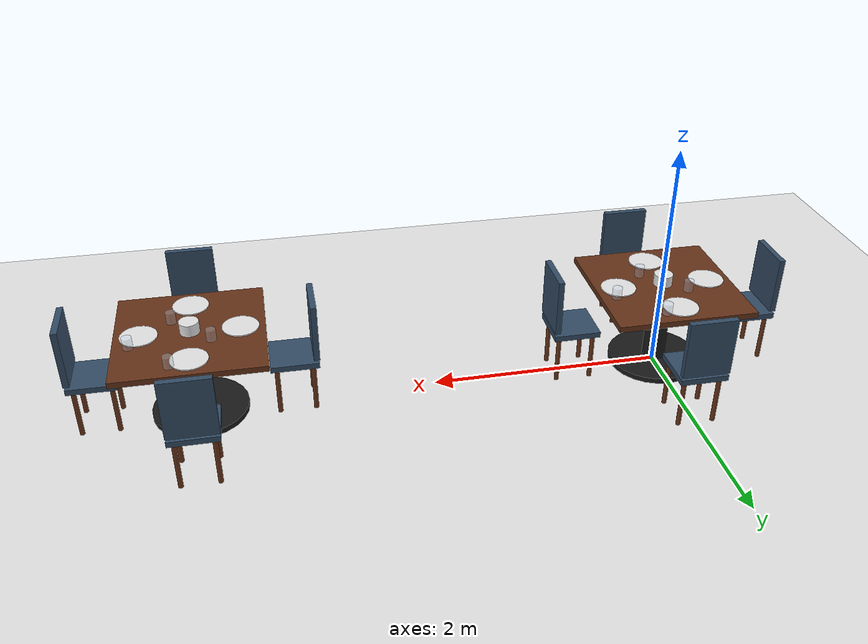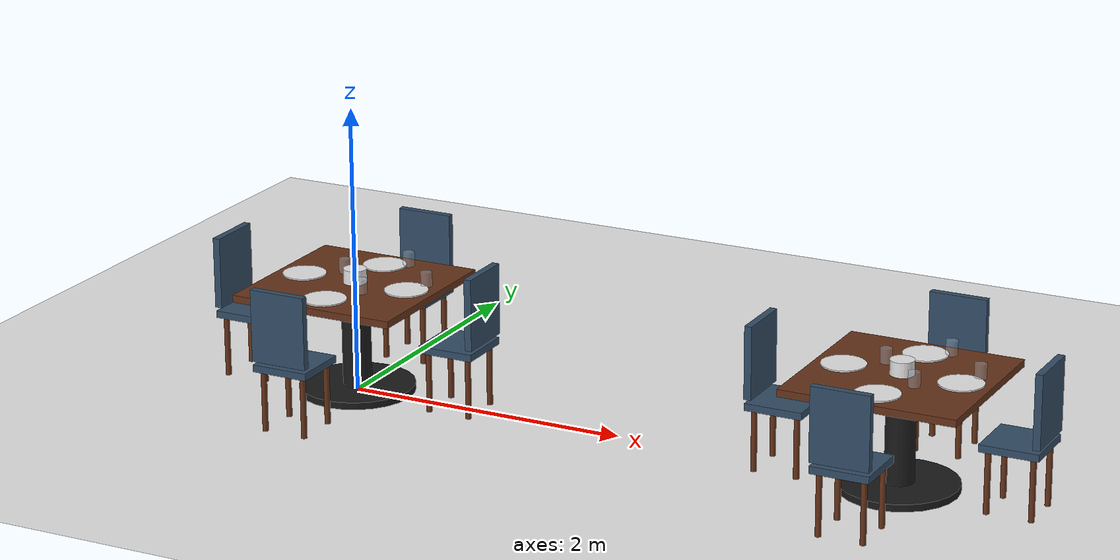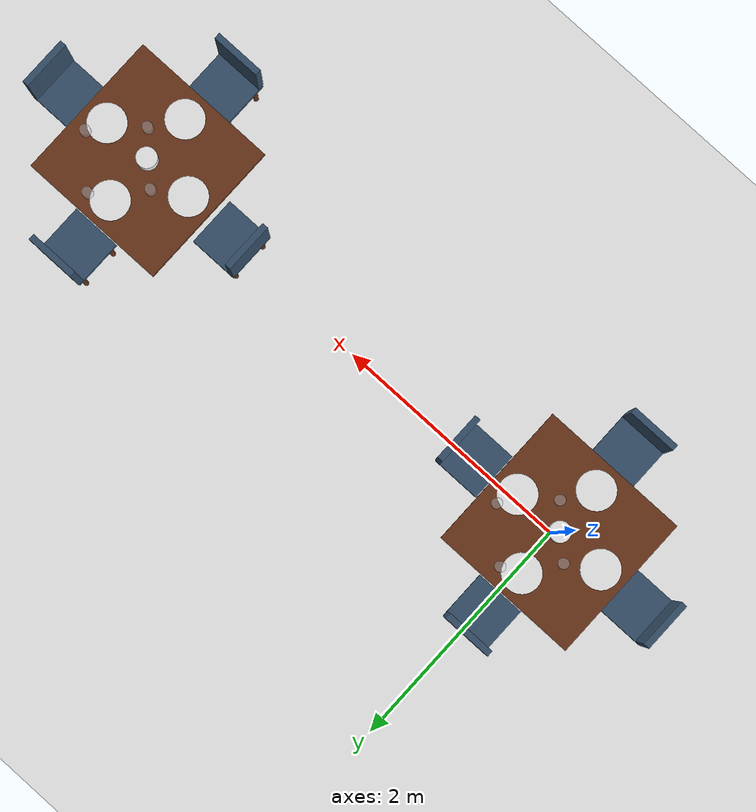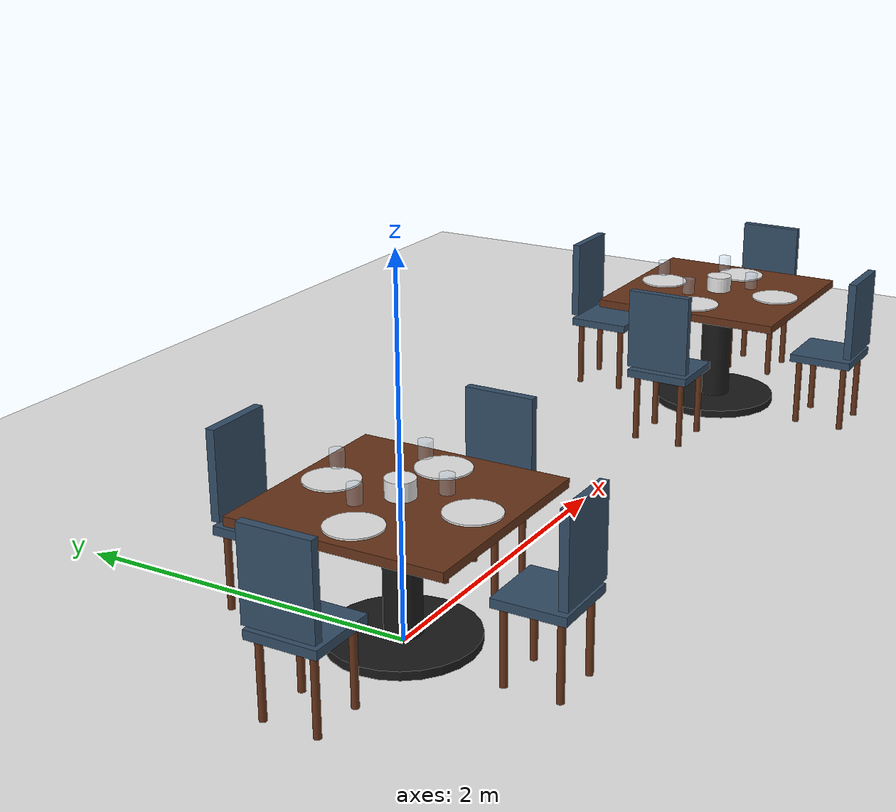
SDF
<sdf version="1.9">
 <world name="argo_restaurant">
  <model name="ground_plane">
   <static>true</static>
   <link name="link">
    <collision name="collision">
     <geometry><plane><normal>0 0 1</normal><size>100 100</size></plane></geometry>
    </collision>
    <visual name="visual">
     <geometry><plane><normal>0 0 1</normal><size>100 100</size></plane></geometry>
     <material>
      <ambient>0.9 0.9 0.9 1</ambient>
      <diffuse>0.9 0.9 0.9 1</diffuse>
      <specular>0.1 0.1 0.1 1</specular>
      <pbr><metal><roughness>0.1</roughness><metalness>0.0</metalness></metal></pbr>
     </material>
    </visual>
   </link>
  </model>
  <model name="table_4">
   <static>true</static>
   <link name="top_link">
    <pose>0.0 0 0.75 0 0 0</pose>
    <collision name="top_collision"><geometry><box><size>1.2 1.2 0.05</size></box></geometry></collision>
    <visual name="top_visual">
     <geometry><box><size>1.2 1.2 0.05</size></box></geometry>
     <material>
      <ambient>0.4 0.2 0.1 1</ambient>
      <diffuse>0.4 0.2 0.1 1</diffuse>
      <specular>0.1 0.1 0.1 1</specular>
      <pbr><metal><roughness>0.7</roughness><metalness>0.1</metalness></metal></pbr>
     </material>
    </visual>
   </link>
   <link name="leg_link">
    <pose>0.0 0 0.375 0 0 0</pose>
    <collision name="leg_collision">
     <geometry><cylinder><radius>0.1</radius><length>0.75</length></cylinder></geometry>
    </collision>
    <visual name="leg_visual">
     <geometry><cylinder><radius>0.1</radius><length>0.75</length></cylinder></geometry>
     <material>
      <ambient>0.1 0.1 0.1 1</ambient>
      <diffuse>0.1 0.1 0.1 1</diffuse>
      <specular>0.1 0.1 0.1 1</specular>
      <pbr><metal><roughness>0.5</roughness><metalness>0.0</metalness></metal></pbr>
     </material>
    </visual>
   </link>
   <link name="base_link">
    <pose>0.0 0 0.025 0 0 0</pose>
    <collision name="base_collision">
     <geometry><cylinder><radius>0.4</radius><length>0.05</length></cylinder></geometry>
    </collision>
    <visual name="base_visual">
     <geometry><cylinder><radius>0.4</radius><length>0.05</length></cylinder></geometry>
     <material>
      <ambient>0.1 0.1 0.1 1</ambient>
      <diffuse>0.1 0.1 0.1 1</diffuse>
      <specular>0.1 0.1 0.1 1</specular>
      <pbr><metal><roughness>0.5</roughness><metalness>0.0</metalness></metal></pbr>
     </material>
    </visual>
   </link>
   <link name="chair_0_seat_link">
    <pose>0.0 0.8 0.45 0 0 0</pose>
    <collision name="chair_0_seat_collision"><geometry><box><size>0.4 0.4 0.05</size></box></geometry></collision>
    <visual name="chair_0_seat_visual">
     <geometry><box><size>0.4 0.4 0.05</size></box></geometry>
     <material>
      <ambient>0.2 0.3 0.4 1</ambient>
      <diffuse>0.2 0.3 0.4 1</diffuse>
      <specular>0.1 0.1 0.1 1</specular>
      <pbr><metal><roughness>0.9</roughness><metalness>0.0</metalness></metal></pbr>
     </material>
    </visual>
   </link>
   <link name="chair_0_leg_-0.15_-0.15_link">
    <pose>-0.15 0.65 0.225 0 0 0</pose>
    <collision name="chair_0_leg_-0.15_-0.15_collision">
     <geometry><cylinder><radius>0.02</radius><length>0.45</length></cylinder></geometry>
    </collision>
    <visual name="chair_0_leg_-0.15_-0.15_visual">
     <geometry><cylinder><radius>0.02</radius><length>0.45</length></cylinder></geometry>
     <material>
      <ambient>0.4 0.2 0.1 1</ambient>
      <diffuse>0.4 0.2 0.1 1</diffuse>
      <specular>0.1 0.1 0.1 1</specular>
      <pbr><metal><roughness>0.7</roughness><metalness>0.1</metalness></metal></pbr>
     </material>
    </visual>
   </link>
   <link name="chair_0_leg_0.15_-0.15_link">
    <pose>0.15 0.65 0.225 0 0 0</pose>
    <collision name="chair_0_leg_0.15_-0.15_collision">
     <geometry><cylinder><radius>0.02</radius><length>0.45</length></cylinder></geometry>
    </collision>
    <visual name="chair_0_leg_0.15_-0.15_visual">
     <geometry><cylinder><radius>0.02</radius><length>0.45</length></cylinder></geometry>
     <material>
      <ambient>0.4 0.2 0.1 1</ambient>
      <diffuse>0.4 0.2 0.1 1</diffuse>
      <specular>0.1 0.1 0.1 1</specular>
      <pbr><metal><roughness>0.7</roughness><metalness>0.1</metalness></metal></pbr>
     </material>
    </visual>
   </link>
   <link name="chair_0_leg_-0.15_0.15_link">
    <pose>-0.15 0.9500000000000001 0.225 0 0 0</pose>
    <collision name="chair_0_leg_-0.15_0.15_collision">
     <geometry><cylinder><radius>0.02</radius><length>0.45</length></cylinder></geometry>
    </collision>
    <visual name="chair_0_leg_-0.15_0.15_visual">
     <geometry><cylinder><radius>0.02</radius><length>0.45</length></cylinder></geometry>
     <material>
      <ambient>0.4 0.2 0.1 1</ambient>
      <diffuse>0.4 0.2 0.1 1</diffuse>
      <specular>0.1 0.1 0.1 1</specular>
      <pbr><metal><roughness>0.7</roughness><metalness>0.1</metalness></metal></pbr>
     </material>
    </visual>
   </link>
   <link name="chair_0_leg_0.15_0.15_link">
    <pose>0.15 0.9500000000000001 0.225 0 0 0</pose>
    <collision name="chair_0_leg_0.15_0.15_collision">
     <geometry><cylinder><radius>0.02</radius><length>0.45</length></cylinder></geometry>
    </collision>
    <visual name="chair_0_leg_0.15_0.15_visual">
     <geometry><cylinder><radius>0.02</radius><length>0.45</length></cylinder></geometry>
     <material>
      <ambient>0.4 0.2 0.1 1</ambient>
      <diffuse>0.4 0.2 0.1 1</diffuse>
      <specular>0.1 0.1 0.1 1</specular>
      <pbr><metal><roughness>0.7</roughness><metalness>0.1</metalness></metal></pbr>
     </material>
    </visual>
   </link>
   <link name="chair_0_back_link">
    <pose>0.0 0.98 0.75 0 0 0</pose>
    <collision name="chair_0_back_collision"><geometry><box><size>0.4 0.05 0.5</size></box></geometry></collision>
    <visual name="chair_0_back_visual">
     <geometry><box><size>0.4 0.05 0.5</size></box></geometry>
     <material>
      <ambient>0.2 0.3 0.4 1</ambient>
      <diffuse>0.2 0.3 0.4 1</diffuse>
      <specular>0.1 0.1 0.1 1</specular>
      <pbr><metal><roughness>0.9</roughness><metalness>0.0</metalness></metal></pbr>
     </material>
    </visual>
   </link>
   <link name="chair_1_seat_link">
    <pose>0.0 -0.8 0.45 0 0 3.1415</pose>
    <collision name="chair_1_seat_collision"><geometry><box><size>0.4 0.4 0.05</size></box></geometry></collision>
    <visual name="chair_1_seat_visual">
     <geometry><box><size>0.4 0.4 0.05</size></box></geometry>
     <material>
      <ambient>0.2 0.3 0.4 1</ambient>
      <diffuse>0.2 0.3 0.4 1</diffuse>
      <specular>0.1 0.1 0.1 1</specular>
      <pbr><metal><roughness>0.9</roughness><metalness>0.0</metalness></metal></pbr>
     </material>
    </visual>
   </link>
   <link name="chair_1_leg_-0.15_-0.15_link">
    <pose>-0.15 -0.9500000000000001 0.225 0 0 0</pose>
    <collision name="chair_1_leg_-0.15_-0.15_collision">
     <geometry><cylinder><radius>0.02</radius><length>0.45</length></cylinder></geometry>
    </collision>
    <visual name="chair_1_leg_-0.15_-0.15_visual">
     <geometry><cylinder><radius>0.02</radius><length>0.45</length></cylinder></geometry>
     <material>
      <ambient>0.4 0.2 0.1 1</ambient>
      <diffuse>0.4 0.2 0.1 1</diffuse>
      <specular>0.1 0.1 0.1 1</specular>
      <pbr><metal><roughness>0.7</roughness><metalness>0.1</metalness></metal></pbr>
     </material>
    </visual>
   </link>
   <link name="chair_1_leg_0.15_-0.15_link">
    <pose>0.15 -0.9500000000000001 0.225 0 0 0</pose>
    <collision name="chair_1_leg_0.15_-0.15_collision">
     <geometry><cylinder><radius>0.02</radius><length>0.45</length></cylinder></geometry>
    </collision>
    <visual name="chair_1_leg_0.15_-0.15_visual">
     <geometry><cylinder><radius>0.02</radius><length>0.45</length></cylinder></geometry>
     <material>
      <ambient>0.4 0.2 0.1 1</ambient>
      <diffuse>0.4 0.2 0.1 1</diffuse>
      <specular>0.1 0.1 0.1 1</specular>
      <pbr><metal><roughness>0.7</roughness><metalness>0.1</metalness></metal></pbr>
     </material>
    </visual>
   </link>
   <link name="chair_1_leg_-0.15_0.15_link">
    <pose>-0.15 -0.65 0.225 0 0 0</pose>
    <collision name="chair_1_leg_-0.15_0.15_collision">
     <geometry><cylinder><radius>0.02</radius><length>0.45</length></cylinder></geometry>
    </collision>
    <visual name="chair_1_leg_-0.15_0.15_visual">
     <geometry><cylinder><radius>0.02</radius><length>0.45</length></cylinder></geometry>
     <material>
      <ambient>0.4 0.2 0.1 1</ambient>
      <diffuse>0.4 0.2 0.1 1</diffuse>
      <specular>0.1 0.1 0.1 1</specular>
      <pbr><metal><roughness>0.7</roughness><metalness>0.1</metalness></metal></pbr>
     </material>
    </visual>
   </link>
   <link name="chair_1_leg_0.15_0.15_link">
    <pose>0.15 -0.65 0.225 0 0 0</pose>
    <collision name="chair_1_leg_0.15_0.15_collision">
     <geometry><cylinder><radius>0.02</radius><length>0.45</length></cylinder></geometry>
    </collision>
    <visual name="chair_1_leg_0.15_0.15_visual">
     <geometry><cylinder><radius>0.02</radius><length>0.45</length></cylinder></geometry>
     <material>
      <ambient>0.4 0.2 0.1 1</ambient>
      <diffuse>0.4 0.2 0.1 1</diffuse>
      <specular>0.1 0.1 0.1 1</specular>
      <pbr><metal><roughness>0.7</roughness><metalness>0.1</metalness></metal></pbr>
     </material>
    </visual>
   </link>
   <link name="chair_1_back_link">
    <pose>-1.6677646138888247e-05 -0.9799999992273781 0.75 0 0 3.1415</pose>
    <collision name="chair_1_back_collision"><geometry><box><size>0.4 0.05 0.5</size></box></geometry></collision>
    <visual name="chair_1_back_visual">
     <geometry><box><size>0.4 0.05 0.5</size></box></geometry>
     <material>
      <ambient>0.2 0.3 0.4 1</ambient>
      <diffuse>0.2 0.3 0.4 1</diffuse>
      <specular>0.1 0.1 0.1 1</specular>
      <pbr><metal><roughness>0.9</roughness><metalness>0.0</metalness></metal></pbr>
     </material>
    </visual>
   </link>
   <link name="chair_2_seat_link">
    <pose>0.8 0 0.45 0 0 -1.5707</pose>
    <collision name="chair_2_seat_collision"><geometry><box><size>0.4 0.4 0.05</size></box></geometry></collision>
    <visual name="chair_2_seat_visual">
     <geometry><box><size>0.4 0.4 0.05</size></box></geometry>
     <material>
      <ambient>0.2 0.3 0.4 1</ambient>
      <diffuse>0.2 0.3 0.4 1</diffuse>
      <specular>0.1 0.1 0.1 1</specular>
      <pbr><metal><roughness>0.9</roughness><metalness>0.0</metalness></metal></pbr>
     </material>
    </visual>
   </link>
   <link name="chair_2_leg_-0.15_-0.15_link">
    <pose>0.65 -0.15 0.225 0 0 0</pose>
    <collision name="chair_2_leg_-0.15_-0.15_collision">
     <geometry><cylinder><radius>0.02</radius><length>0.45</length></cylinder></geometry>
    </collision>
    <visual name="chair_2_leg_-0.15_-0.15_visual">
     <geometry><cylinder><radius>0.02</radius><length>0.45</length></cylinder></geometry>
     <material>
      <ambient>0.4 0.2 0.1 1</ambient>
      <diffuse>0.4 0.2 0.1 1</diffuse>
      <specular>0.1 0.1 0.1 1</specular>
      <pbr><metal><roughness>0.7</roughness><metalness>0.1</metalness></metal></pbr>
     </material>
    </visual>
   </link>
   <link name="chair_2_leg_0.15_-0.15_link">
    <pose>0.9500000000000001 -0.15 0.225 0 0 0</pose>
    <collision name="chair_2_leg_0.15_-0.15_collision">
     <geometry><cylinder><radius>0.02</radius><length>0.45</length></cylinder></geometry>
    </collision>
    <visual name="chair_2_leg_0.15_-0.15_visual">
     <geometry><cylinder><radius>0.02</radius><length>0.45</length></cylinder></geometry>
     <material>
      <ambient>0.4 0.2 0.1 1</ambient>
      <diffuse>0.4 0.2 0.1 1</diffuse>
      <specular>0.1 0.1 0.1 1</specular>
      <pbr><metal><roughness>0.7</roughness><metalness>0.1</metalness></metal></pbr>
     </material>
    </visual>
   </link>
   <link name="chair_2_leg_-0.15_0.15_link">
    <pose>0.65 0.15 0.225 0 0 0</pose>
    <collision name="chair_2_leg_-0.15_0.15_collision">
     <geometry><cylinder><radius>0.02</radius><length>0.45</length></cylinder></geometry>
    </collision>
    <visual name="chair_2_leg_-0.15_0.15_visual">
     <geometry><cylinder><radius>0.02</radius><length>0.45</length></cylinder></geometry>
     <material>
      <ambient>0.4 0.2 0.1 1</ambient>
      <diffuse>0.4 0.2 0.1 1</diffuse>
      <specular>0.1 0.1 0.1 1</specular>
      <pbr><metal><roughness>0.7</roughness><metalness>0.1</metalness></metal></pbr>
     </material>
    </visual>
   </link>
   <link name="chair_2_leg_0.15_0.15_link">
    <pose>0.9500000000000001 0.15 0.225 0 0 0</pose>
    <collision name="chair_2_leg_0.15_0.15_collision">
     <geometry><cylinder><radius>0.02</radius><length>0.45</length></cylinder></geometry>
    </collision>
    <visual name="chair_2_leg_0.15_0.15_visual">
     <geometry><cylinder><radius>0.02</radius><length>0.45</length></cylinder></geometry>
     <material>
      <ambient>0.4 0.2 0.1 1</ambient>
      <diffuse>0.4 0.2 0.1 1</diffuse>
      <specular>0.1 0.1 0.1 1</specular>
      <pbr><metal><roughness>0.7</roughness><metalness>0.1</metalness></metal></pbr>
     </material>
    </visual>
   </link>
   <link name="chair_2_back_link">
    <pose>0.9799999991649034 1.7338823054580086e-05 0.75 0 0 -1.5707</pose>
    <collision name="chair_2_back_collision"><geometry><box><size>0.4 0.05 0.5</size></box></geometry></collision>
    <visual name="chair_2_back_visual">
     <geometry><box><size>0.4 0.05 0.5</size></box></geometry>
     <material>
      <ambient>0.2 0.3 0.4 1</ambient>
      <diffuse>0.2 0.3 0.4 1</diffuse>
      <specular>0.1 0.1 0.1 1</specular>
      <pbr><metal><roughness>0.9</roughness><metalness>0.0</metalness></metal></pbr>
     </material>
    </visual>
   </link>
   <link name="chair_3_seat_link">
    <pose>-0.8 0 0.45 0 0 1.5707</pose>
    <collision name="chair_3_seat_collision"><geometry><box><size>0.4 0.4 0.05</size></box></geometry></collision>
    <visual name="chair_3_seat_visual">
     <geometry><box><size>0.4 0.4 0.05</size></box></geometry>
     <material>
      <ambient>0.2 0.3 0.4 1</ambient>
      <diffuse>0.2 0.3 0.4 1</diffuse>
      <specular>0.1 0.1 0.1 1</specular>
      <pbr><metal><roughness>0.9</roughness><metalness>0.0</metalness></metal></pbr>
     </material>
    </visual>
   </link>
   <link name="chair_3_leg_-0.15_-0.15_link">
    <pose>-0.9500000000000001 -0.15 0.225 0 0 0</pose>
    <collision name="chair_3_leg_-0.15_-0.15_collision">
     <geometry><cylinder><radius>0.02</radius><length>0.45</length></cylinder></geometry>
    </collision>
    <visual name="chair_3_leg_-0.15_-0.15_visual">
     <geometry><cylinder><radius>0.02</radius><length>0.45</length></cylinder></geometry>
     <material>
      <ambient>0.4 0.2 0.1 1</ambient>
      <diffuse>0.4 0.2 0.1 1</diffuse>
      <specular>0.1 0.1 0.1 1</specular>
      <pbr><metal><roughness>0.7</roughness><metalness>0.1</metalness></metal></pbr>
     </material>
    </visual>
   </link>
   <link name="chair_3_leg_0.15_-0.15_link">
    <pose>-0.65 -0.15 0.225 0 0 0</pose>
    <collision name="chair_3_leg_0.15_-0.15_collision">
     <geometry><cylinder><radius>0.02</radius><length>0.45</length></cylinder></geometry>
    </collision>
    <visual name="chair_3_leg_0.15_-0.15_visual">
     <geometry><cylinder><radius>0.02</radius><length>0.45</length></cylinder></geometry>
     <material>
      <ambient>0.4 0.2 0.1 1</ambient>
      <diffuse>0.4 0.2 0.1 1</diffuse>
      <specular>0.1 0.1 0.1 1</specular>
      <pbr><metal><roughness>0.7</roughness><metalness>0.1</metalness></metal></pbr>
     </material>
    </visual>
   </link>
   <link name="chair_3_leg_-0.15_0.15_link">
    <pose>-0.9500000000000001 0.15 0.225 0 0 0</pose>
    <collision name="chair_3_leg_-0.15_0.15_collision">
     <geometry><cylinder><radius>0.02</radius><length>0.45</length></cylinder></geometry>
    </collision>
    <visual name="chair_3_leg_-0.15_0.15_visual">
     <geometry><cylinder><radius>0.02</radius><length>0.45</length></cylinder></geometry>
     <material>
      <ambient>0.4 0.2 0.1 1</ambient>
      <diffuse>0.4 0.2 0.1 1</diffuse>
      <specular>0.1 0.1 0.1 1</specular>
      <pbr><metal><roughness>0.7</roughness><metalness>0.1</metalness></metal></pbr>
     </material>
    </visual>
   </link>
   <link name="chair_3_leg_0.15_0.15_link">
    <pose>-0.65 0.15 0.225 0 0 0</pose>
    <collision name="chair_3_leg_0.15_0.15_collision">
     <geometry><cylinder><radius>0.02</radius><length>0.45</length></cylinder></geometry>
    </collision>
    <visual name="chair_3_leg_0.15_0.15_visual">
     <geometry><cylinder><radius>0.02</radius><length>0.45</length></cylinder></geometry>
     <material>
      <ambient>0.4 0.2 0.1 1</ambient>
      <diffuse>0.4 0.2 0.1 1</diffuse>
      <specular>0.1 0.1 0.1 1</specular>
      <pbr><metal><roughness>0.7</roughness><metalness>0.1</metalness></metal></pbr>
     </material>
    </visual>
   </link>
   <link name="chair_3_back_link">
    <pose>-0.9799999991649034 1.7338823054580086e-05 0.75 0 0 1.5707</pose>
    <collision name="chair_3_back_collision"><geometry><box><size>0.4 0.05 0.5</size></box></geometry></collision>
    <visual name="chair_3_back_visual">
     <geometry><box><size>0.4 0.05 0.5</size></box></geometry>
     <material>
      <ambient>0.2 0.3 0.4 1</ambient>
      <diffuse>0.2 0.3 0.4 1</diffuse>
      <specular>0.1 0.1 0.1 1</specular>
      <pbr><metal><roughness>0.9</roughness><metalness>0.0</metalness></metal></pbr>
     </material>
    </visual>
   </link>
   <link name="centerpiece_pot_link">
    <pose>0.0 0 0.825 0 0 0</pose>
    <collision name="centerpiece_pot_collision">
     <geometry><cylinder><radius>0.08</radius><length>0.1</length></cylinder></geometry>
    </collision>
    <visual name="centerpiece_pot_visual">
     <geometry><cylinder><radius>0.08</radius><length>0.1</length></cylinder></geometry>
     <material>
      <ambient>0.9 0.9 0.9 1</ambient>
      <diffuse>0.9 0.9 0.9 1</diffuse>
      <specular>0.1 0.1 0.1 1</specular>
      <pbr><metal><roughness>0.2</roughness><metalness>0.0</metalness></metal></pbr>
     </material>
    </visual>
   </link>
   <link name="plate_0_link">
    <pose>0.0 0.4 0.78 0 0 0</pose>
    <collision name="plate_0_collision">
     <geometry><cylinder><radius>0.15</radius><length>0.01</length></cylinder></geometry>
    </collision>
    <visual name="plate_0_visual">
     <geometry><cylinder><radius>0.15</radius><length>0.01</length></cylinder></geometry>
     <material>
      <ambient>0.9 0.9 0.9 1</ambient>
      <diffuse>0.9 0.9 0.9 1</diffuse>
      <specular>0.1 0.1 0.1 1</specular>
      <pbr><metal><roughness>0.2</roughness><metalness>0.0</metalness></metal></pbr>
     </material>
    </visual>
   </link>
   <link name="glass_0_link">
    <pose>0.15 0.4700000000000001 0.825 0 0 0</pose>
    <collision name="glass_0_collision">
     <geometry><cylinder><radius>0.04</radius><length>0.1</length></cylinder></geometry>
    </collision>
    <visual name="glass_0_visual">
     <geometry><cylinder><radius>0.04</radius><length>0.1</length></cylinder></geometry>
     <material>
      <ambient>0.8 0.9 1.0 0.3</ambient>
      <diffuse>0.8 0.9 1.0 0.3</diffuse>
      <specular>0.9 0.9 0.9 1</specular>
      <pbr><metal><roughness>0.0</roughness><metalness>0.9</metalness></metal></pbr>
     </material>
    </visual>
   </link>
   <link name="plate_1_link">
    <pose>0.0 -0.4 0.78 0 0 0</pose>
    <collision name="plate_1_collision">
     <geometry><cylinder><radius>0.15</radius><length>0.01</length></cylinder></geometry>
    </collision>
    <visual name="plate_1_visual">
     <geometry><cylinder><radius>0.15</radius><length>0.01</length></cylinder></geometry>
     <material>
      <ambient>0.9 0.9 0.9 1</ambient>
      <diffuse>0.9 0.9 0.9 1</diffuse>
      <specular>0.1 0.1 0.1 1</specular>
      <pbr><metal><roughness>0.2</roughness><metalness>0.0</metalness></metal></pbr>
     </material>
    </visual>
   </link>
   <link name="glass_1_link">
    <pose>0.15 -0.17000000000000007 0.825 0 0 0</pose>
    <collision name="glass_1_collision">
     <geometry><cylinder><radius>0.04</radius><length>0.1</length></cylinder></geometry>
    </collision>
    <visual name="glass_1_visual">
     <geometry><cylinder><radius>0.04</radius><length>0.1</length></cylinder></geometry>
     <material>
      <ambient>0.8 0.9 1.0 0.3</ambient>
      <diffuse>0.8 0.9 1.0 0.3</diffuse>
      <specular>0.9 0.9 0.9 1</specular>
      <pbr><metal><roughness>0.0</roughness><metalness>0.9</metalness></metal></pbr>
     </material>
    </visual>
   </link>
   <link name="plate_2_link">
    <pose>0.4 0 0.78 0 0 0</pose>
    <collision name="plate_2_collision">
     <geometry><cylinder><radius>0.15</radius><length>0.01</length></cylinder></geometry>
    </collision>
    <visual name="plate_2_visual">
     <geometry><cylinder><radius>0.15</radius><length>0.01</length></cylinder></geometry>
     <material>
      <ambient>0.9 0.9 0.9 1</ambient>
      <diffuse>0.9 0.9 0.9 1</diffuse>
      <specular>0.1 0.1 0.1 1</specular>
      <pbr><metal><roughness>0.2</roughness><metalness>0.0</metalness></metal></pbr>
     </material>
    </visual>
   </link>
   <link name="glass_2_link">
    <pose>0.4700000000000001 0.15 0.825 0 0 0</pose>
    <collision name="glass_2_collision">
     <geometry><cylinder><radius>0.04</radius><length>0.1</length></cylinder></geometry>
    </collision>
    <visual name="glass_2_visual">
     <geometry><cylinder><radius>0.04</radius><length>0.1</length></cylinder></geometry>
     <material>
      <ambient>0.8 0.9 1.0 0.3</ambient>
      <diffuse>0.8 0.9 1.0 0.3</diffuse>
      <specular>0.9 0.9 0.9 1</specular>
      <pbr><metal><roughness>0.0</roughness><metalness>0.9</metalness></metal></pbr>
     </material>
    </visual>
   </link>
   <link name="plate_3_link">
    <pose>-0.4 0 0.78 0 0 0</pose>
    <collision name="plate_3_collision">
     <geometry><cylinder><radius>0.15</radius><length>0.01</length></cylinder></geometry>
    </collision>
    <visual name="plate_3_visual">
     <geometry><cylinder><radius>0.15</radius><length>0.01</length></cylinder></geometry>
     <material>
      <ambient>0.9 0.9 0.9 1</ambient>
      <diffuse>0.9 0.9 0.9 1</diffuse>
      <specular>0.1 0.1 0.1 1</specular>
      <pbr><metal><roughness>0.2</roughness><metalness>0.0</metalness></metal></pbr>
     </material>
    </visual>
   </link>
   <link name="glass_3_link">
    <pose>-0.17000000000000007 0.15 0.825 0 0 0</pose>
    <collision name="glass_3_collision">
     <geometry><cylinder><radius>0.04</radius><length>0.1</length></cylinder></geometry>
    </collision>
    <visual name="glass_3_visual">
     <geometry><cylinder><radius>0.04</radius><length>0.1</length></cylinder></geometry>
     <material>
      <ambient>0.8 0.9 1.0 0.3</ambient>
      <diffuse>0.8 0.9 1.0 0.3</diffuse>
      <specular>0.9 0.9 0.9 1</specular>
      <pbr><metal><roughness>0.0</roughness><metalness>0.9</metalness></metal></pbr>
     </material>
    </visual>
   </link>
  </model>
  <model name="table_5">
   <static>true</static>
   <link name="top_link">
    <pose>4.0 0 0.75 0 0 0</pose>
    <collision name="top_collision"><geometry><box><size>1.2 1.2 0.05</size></box></geometry></collision>
    <visual name="top_visual">
     <geometry><box><size>1.2 1.2 0.05</size></box></geometry>
     <material>
      <ambient>0.4 0.2 0.1 1</ambient>
      <diffuse>0.4 0.2 0.1 1</diffuse>
      <specular>0.1 0.1 0.1 1</specular>
      <pbr><metal><roughness>0.7</roughness><metalness>0.1</metalness></metal></pbr>
     </material>
    </visual>
   </link>
   <link name="leg_link">
    <pose>4.0 0 0.375 0 0 0</pose>
    <collision name="leg_collision">
     <geometry><cylinder><radius>0.1</radius><length>0.75</length></cylinder></geometry>
    </collision>
    <visual name="leg_visual">
     <geometry><cylinder><radius>0.1</radius><length>0.75</length></cylinder></geometry>
     <material>
      <ambient>0.1 0.1 0.1 1</ambient>
      <diffuse>0.1 0.1 0.1 1</diffuse>
      <specular>0.1 0.1 0.1 1</specular>
      <pbr><metal><roughness>0.5</roughness><metalness>0.0</metalness></metal></pbr>
     </material>
    </visual>
   </link>
   <link name="base_link">
    <pose>4.0 0 0.025 0 0 0</pose>
    <collision name="base_collision">
     <geometry><cylinder><radius>0.4</radius><length>0.05</length></cylinder></geometry>
    </collision>
    <visual name="base_visual">
     <geometry><cylinder><radius>0.4</radius><length>0.05</length></cylinder></geometry>
     <material>
      <ambient>0.1 0.1 0.1 1</ambient>
      <diffuse>0.1 0.1 0.1 1</diffuse>
      <specular>0.1 0.1 0.1 1</specular>
      <pbr><metal><roughness>0.5</roughness><metalness>0.0</metalness></metal></pbr>
     </material>
    </visual>
   </link>
   <link name="chair_0_seat_link">
    <pose>4.0 0.8 0.45 0 0 0</pose>
    <collision name="chair_0_seat_collision"><geometry><box><size>0.4 0.4 0.05</size></box></geometry></collision>
    <visual name="chair_0_seat_visual">
     <geometry><box><size>0.4 0.4 0.05</size></box></geometry>
     <material>
      <ambient>0.2 0.3 0.4 1</ambient>
      <diffuse>0.2 0.3 0.4 1</diffuse>
      <specular>0.1 0.1 0.1 1</specular>
      <pbr><metal><roughness>0.9</roughness><metalness>0.0</metalness></metal></pbr>
     </material>
    </visual>
   </link>
   <link name="chair_0_leg_-0.15_-0.15_link">
    <pose>3.85 0.65 0.225 0 0 0</pose>
    <collision name="chair_0_leg_-0.15_-0.15_collision">
     <geometry><cylinder><radius>0.02</radius><length>0.45</length></cylinder></geometry>
    </collision>
    <visual name="chair_0_leg_-0.15_-0.15_visual">
     <geometry><cylinder><radius>0.02</radius><length>0.45</length></cylinder></geometry>
     <material>
      <ambient>0.4 0.2 0.1 1</ambient>
      <diffuse>0.4 0.2 0.1 1</diffuse>
      <specular>0.1 0.1 0.1 1</specular>
      <pbr><metal><roughness>0.7</roughness><metalness>0.1</metalness></metal></pbr>
     </material>
    </visual>
   </link>
   <link name="chair_0_leg_0.15_-0.15_link">
    <pose>4.15 0.65 0.225 0 0 0</pose>
    <collision name="chair_0_leg_0.15_-0.15_collision">
     <geometry><cylinder><radius>0.02</radius><length>0.45</length></cylinder></geometry>
    </collision>
    <visual name="chair_0_leg_0.15_-0.15_visual">
     <geometry><cylinder><radius>0.02</radius><length>0.45</length></cylinder></geometry>
     <material>
      <ambient>0.4 0.2 0.1 1</ambient>
      <diffuse>0.4 0.2 0.1 1</diffuse>
      <specular>0.1 0.1 0.1 1</specular>
      <pbr><metal><roughness>0.7</roughness><metalness>0.1</metalness></metal></pbr>
     </material>
    </visual>
   </link>
   <link name="chair_0_leg_-0.15_0.15_link">
    <pose>3.85 0.9500000000000001 0.225 0 0 0</pose>
    <collision name="chair_0_leg_-0.15_0.15_collision">
     <geometry><cylinder><radius>0.02</radius><length>0.45</length></cylinder></geometry>
    </collision>
    <visual name="chair_0_leg_-0.15_0.15_visual">
     <geometry><cylinder><radius>0.02</radius><length>0.45</length></cylinder></geometry>
     <material>
      <ambient>0.4 0.2 0.1 1</ambient>
      <diffuse>0.4 0.2 0.1 1</diffuse>
      <specular>0.1 0.1 0.1 1</specular>
      <pbr><metal><roughness>0.7</roughness><metalness>0.1</metalness></metal></pbr>
     </material>
    </visual>
   </link>
   <link name="chair_0_leg_0.15_0.15_link">
    <pose>4.15 0.9500000000000001 0.225 0 0 0</pose>
    <collision name="chair_0_leg_0.15_0.15_collision">
     <geometry><cylinder><radius>0.02</radius><length>0.45</length></cylinder></geometry>
    </collision>
    <visual name="chair_0_leg_0.15_0.15_visual">
     <geometry><cylinder><radius>0.02</radius><length>0.45</length></cylinder></geometry>
     <material>
      <ambient>0.4 0.2 0.1 1</ambient>
      <diffuse>0.4 0.2 0.1 1</diffuse>
      <specular>0.1 0.1 0.1 1</specular>
      <pbr><metal><roughness>0.7</roughness><metalness>0.1</metalness></metal></pbr>
     </material>
    </visual>
   </link>
   <link name="chair_0_back_link">
    <pose>4.0 0.98 0.75 0 0 0</pose>
    <collision name="chair_0_back_collision"><geometry><box><size>0.4 0.05 0.5</size></box></geometry></collision>
    <visual name="chair_0_back_visual">
     <geometry><box><size>0.4 0.05 0.5</size></box></geometry>
     <material>
      <ambient>0.2 0.3 0.4 1</ambient>
      <diffuse>0.2 0.3 0.4 1</diffuse>
      <specular>0.1 0.1 0.1 1</specular>
      <pbr><metal><roughness>0.9</roughness><metalness>0.0</metalness></metal></pbr>
     </material>
    </visual>
   </link>
   <link name="chair_1_seat_link">
    <pose>4.0 -0.8 0.45 0 0 3.1415</pose>
    <collision name="chair_1_seat_collision"><geometry><box><size>0.4 0.4 0.05</size></box></geometry></collision>
    <visual name="chair_1_seat_visual">
     <geometry><box><size>0.4 0.4 0.05</size></box></geometry>
     <material>
      <ambient>0.2 0.3 0.4 1</ambient>
      <diffuse>0.2 0.3 0.4 1</diffuse>
      <specular>0.1 0.1 0.1 1</specular>
      <pbr><metal><roughness>0.9</roughness><metalness>0.0</metalness></metal></pbr>
     </material>
    </visual>
   </link>
   <link name="chair_1_leg_-0.15_-0.15_link">
    <pose>3.85 -0.9500000000000001 0.225 0 0 0</pose>
    <collision name="chair_1_leg_-0.15_-0.15_collision">
     <geometry><cylinder><radius>0.02</radius><length>0.45</length></cylinder></geometry>
    </collision>
    <visual name="chair_1_leg_-0.15_-0.15_visual">
     <geometry><cylinder><radius>0.02</radius><length>0.45</length></cylinder></geometry>
     <material>
      <ambient>0.4 0.2 0.1 1</ambient>
      <diffuse>0.4 0.2 0.1 1</diffuse>
      <specular>0.1 0.1 0.1 1</specular>
      <pbr><metal><roughness>0.7</roughness><metalness>0.1</metalness></metal></pbr>
     </material>
    </visual>
   </link>
   <link name="chair_1_leg_0.15_-0.15_link">
    <pose>4.15 -0.9500000000000001 0.225 0 0 0</pose>
    <collision name="chair_1_leg_0.15_-0.15_collision">
     <geometry><cylinder><radius>0.02</radius><length>0.45</length></cylinder></geometry>
    </collision>
    <visual name="chair_1_leg_0.15_-0.15_visual">
     <geometry><cylinder><radius>0.02</radius><length>0.45</length></cylinder></geometry>
     <material>
      <ambient>0.4 0.2 0.1 1</ambient>
      <diffuse>0.4 0.2 0.1 1</diffuse>
      <specular>0.1 0.1 0.1 1</specular>
      <pbr><metal><roughness>0.7</roughness><metalness>0.1</metalness></metal></pbr>
     </material>
    </visual>
   </link>
   <link name="chair_1_leg_-0.15_0.15_link">
    <pose>3.85 -0.65 0.225 0 0 0</pose>
    <collision name="chair_1_leg_-0.15_0.15_collision">
     <geometry><cylinder><radius>0.02</radius><length>0.45</length></cylinder></geometry>
    </collision>
    <visual name="chair_1_leg_-0.15_0.15_visual">
     <geometry><cylinder><radius>0.02</radius><length>0.45</length></cylinder></geometry>
     <material>
      <ambient>0.4 0.2 0.1 1</ambient>
      <diffuse>0.4 0.2 0.1 1</diffuse>
      <specular>0.1 0.1 0.1 1</specular>
      <pbr><metal><roughness>0.7</roughness><metalness>0.1</metalness></metal></pbr>
     </material>
    </visual>
   </link>
   <link name="chair_1_leg_0.15_0.15_link">
    <pose>4.15 -0.65 0.225 0 0 0</pose>
    <collision name="chair_1_leg_0.15_0.15_collision">
     <geometry><cylinder><radius>0.02</radius><length>0.45</length></cylinder></geometry>
    </collision>
    <visual name="chair_1_leg_0.15_0.15_visual">
     <geometry><cylinder><radius>0.02</radius><length>0.45</length></cylinder></geometry>
     <material>
      <ambient>0.4 0.2 0.1 1</ambient>
      <diffuse>0.4 0.2 0.1 1</diffuse>
      <specular>0.1 0.1 0.1 1</specular>
      <pbr><metal><roughness>0.7</roughness><metalness>0.1</metalness></metal></pbr>
     </material>
    </visual>
   </link>
   <link name="chair_1_back_link">
    <pose>3.9999833223538612 -0.9799999992273781 0.75 0 0 3.1415</pose>
    <collision name="chair_1_back_collision"><geometry><box><size>0.4 0.05 0.5</size></box></geometry></collision>
    <visual name="chair_1_back_visual">
     <geometry><box><size>0.4 0.05 0.5</size></box></geometry>
     <material>
      <ambient>0.2 0.3 0.4 1</ambient>
      <diffuse>0.2 0.3 0.4 1</diffuse>
      <specular>0.1 0.1 0.1 1</specular>
      <pbr><metal><roughness>0.9</roughness><metalness>0.0</metalness></metal></pbr>
     </material>
    </visual>
   </link>
   <link name="chair_2_seat_link">
    <pose>4.8 0 0.45 0 0 -1.5707</pose>
    <collision name="chair_2_seat_collision"><geometry><box><size>0.4 0.4 0.05</size></box></geometry></collision>
    <visual name="chair_2_seat_visual">
     <geometry><box><size>0.4 0.4 0.05</size></box></geometry>
     <material>
      <ambient>0.2 0.3 0.4 1</ambient>
      <diffuse>0.2 0.3 0.4 1</diffuse>
      <specular>0.1 0.1 0.1 1</specular>
      <pbr><metal><roughness>0.9</roughness><metalness>0.0</metalness></metal></pbr>
     </material>
    </visual>
   </link>
   <link name="chair_2_leg_-0.15_-0.15_link">
    <pose>4.6499999999999995 -0.15 0.225 0 0 0</pose>
    <collision name="chair_2_leg_-0.15_-0.15_collision">
     <geometry><cylinder><radius>0.02</radius><length>0.45</length></cylinder></geometry>
    </collision>
    <visual name="chair_2_leg_-0.15_-0.15_visual">
     <geometry><cylinder><radius>0.02</radius><length>0.45</length></cylinder></geometry>
     <material>
      <ambient>0.4 0.2 0.1 1</ambient>
      <diffuse>0.4 0.2 0.1 1</diffuse>
      <specular>0.1 0.1 0.1 1</specular>
      <pbr><metal><roughness>0.7</roughness><metalness>0.1</metalness></metal></pbr>
     </material>
    </visual>
   </link>
   <link name="chair_2_leg_0.15_-0.15_link">
    <pose>4.95 -0.15 0.225 0 0 0</pose>
    <collision name="chair_2_leg_0.15_-0.15_collision">
     <geometry><cylinder><radius>0.02</radius><length>0.45</length></cylinder></geometry>
    </collision>
    <visual name="chair_2_leg_0.15_-0.15_visual">
     <geometry><cylinder><radius>0.02</radius><length>0.45</length></cylinder></geometry>
     <material>
      <ambient>0.4 0.2 0.1 1</ambient>
      <diffuse>0.4 0.2 0.1 1</diffuse>
      <specular>0.1 0.1 0.1 1</specular>
      <pbr><metal><roughness>0.7</roughness><metalness>0.1</metalness></metal></pbr>
     </material>
    </visual>
   </link>
   <link name="chair_2_leg_-0.15_0.15_link">
    <pose>4.6499999999999995 0.15 0.225 0 0 0</pose>
    <collision name="chair_2_leg_-0.15_0.15_collision">
     <geometry><cylinder><radius>0.02</radius><length>0.45</length></cylinder></geometry>
    </collision>
    <visual name="chair_2_leg_-0.15_0.15_visual">
     <geometry><cylinder><radius>0.02</radius><length>0.45</length></cylinder></geometry>
     <material>
      <ambient>0.4 0.2 0.1 1</ambient>
      <diffuse>0.4 0.2 0.1 1</diffuse>
      <specular>0.1 0.1 0.1 1</specular>
      <pbr><metal><roughness>0.7</roughness><metalness>0.1</metalness></metal></pbr>
     </material>
    </visual>
   </link>
   <link name="chair_2_leg_0.15_0.15_link">
    <pose>4.95 0.15 0.225 0 0 0</pose>
    <collision name="chair_2_leg_0.15_0.15_collision">
     <geometry><cylinder><radius>0.02</radius><length>0.45</length></cylinder></geometry>
    </collision>
    <visual name="chair_2_leg_0.15_0.15_visual">
     <geometry><cylinder><radius>0.02</radius><length>0.45</length></cylinder></geometry>
     <material>
      <ambient>0.4 0.2 0.1 1</ambient>
      <diffuse>0.4 0.2 0.1 1</diffuse>
      <specular>0.1 0.1 0.1 1</specular>
      <pbr><metal><roughness>0.7</roughness><metalness>0.1</metalness></metal></pbr>
     </material>
    </visual>
   </link>
   <link name="chair_2_back_link">
    <pose>4.979999999164903 1.7338823054580086e-05 0.75 0 0 -1.5707</pose>
    <collision name="chair_2_back_collision"><geometry><box><size>0.4 0.05 0.5</size></box></geometry></collision>
    <visual name="chair_2_back_visual">
     <geometry><box><size>0.4 0.05 0.5</size></box></geometry>
     <material>
      <ambient>0.2 0.3 0.4 1</ambient>
      <diffuse>0.2 0.3 0.4 1</diffuse>
      <specular>0.1 0.1 0.1 1</specular>
      <pbr><metal><roughness>0.9</roughness><metalness>0.0</metalness></metal></pbr>
     </material>
    </visual>
   </link>
   <link name="chair_3_seat_link">
    <pose>3.2 0 0.45 0 0 1.5707</pose>
    <collision name="chair_3_seat_collision"><geometry><box><size>0.4 0.4 0.05</size></box></geometry></collision>
    <visual name="chair_3_seat_visual">
     <geometry><box><size>0.4 0.4 0.05</size></box></geometry>
     <material>
      <ambient>0.2 0.3 0.4 1</ambient>
      <diffuse>0.2 0.3 0.4 1</diffuse>
      <specular>0.1 0.1 0.1 1</specular>
      <pbr><metal><roughness>0.9</roughness><metalness>0.0</metalness></metal></pbr>
     </material>
    </visual>
   </link>
   <link name="chair_3_leg_-0.15_-0.15_link">
    <pose>3.0500000000000003 -0.15 0.225 0 0 0</pose>
    <collision name="chair_3_leg_-0.15_-0.15_collision">
     <geometry><cylinder><radius>0.02</radius><length>0.45</length></cylinder></geometry>
    </collision>
    <visual name="chair_3_leg_-0.15_-0.15_visual">
     <geometry><cylinder><radius>0.02</radius><length>0.45</length></cylinder></geometry>
     <material>
      <ambient>0.4 0.2 0.1 1</ambient>
      <diffuse>0.4 0.2 0.1 1</diffuse>
      <specular>0.1 0.1 0.1 1</specular>
      <pbr><metal><roughness>0.7</roughness><metalness>0.1</metalness></metal></pbr>
     </material>
    </visual>
   </link>
   <link name="chair_3_leg_0.15_-0.15_link">
    <pose>3.35 -0.15 0.225 0 0 0</pose>
    <collision name="chair_3_leg_0.15_-0.15_collision">
     <geometry><cylinder><radius>0.02</radius><length>0.45</length></cylinder></geometry>
    </collision>
    <visual name="chair_3_leg_0.15_-0.15_visual">
     <geometry><cylinder><radius>0.02</radius><length>0.45</length></cylinder></geometry>
     <material>
      <ambient>0.4 0.2 0.1 1</ambient>
      <diffuse>0.4 0.2 0.1 1</diffuse>
      <specular>0.1 0.1 0.1 1</specular>
      <pbr><metal><roughness>0.7</roughness><metalness>0.1</metalness></metal></pbr>
     </material>
    </visual>
   </link>
   <link name="chair_3_leg_-0.15_0.15_link">
    <pose>3.0500000000000003 0.15 0.225 0 0 0</pose>
    <collision name="chair_3_leg_-0.15_0.15_collision">
     <geometry><cylinder><radius>0.02</radius><length>0.45</length></cylinder></geometry>
    </collision>
    <visual name="chair_3_leg_-0.15_0.15_visual">
     <geometry><cylinder><radius>0.02</radius><length>0.45</length></cylinder></geometry>
     <material>
      <ambient>0.4 0.2 0.1 1</ambient>
      <diffuse>0.4 0.2 0.1 1</diffuse>
      <specular>0.1 0.1 0.1 1</specular>
      <pbr><metal><roughness>0.7</roughness><metalness>0.1</metalness></metal></pbr>
     </material>
    </visual>
   </link>
   <link name="chair_3_leg_0.15_0.15_link">
    <pose>3.35 0.15 0.225 0 0 0</pose>
    <collision name="chair_3_leg_0.15_0.15_collision">
     <geometry><cylinder><radius>0.02</radius><length>0.45</length></cylinder></geometry>
    </collision>
    <visual name="chair_3_leg_0.15_0.15_visual">
     <geometry><cylinder><radius>0.02</radius><length>0.45</length></cylinder></geometry>
     <material>
      <ambient>0.4 0.2 0.1 1</ambient>
      <diffuse>0.4 0.2 0.1 1</diffuse>
      <specular>0.1 0.1 0.1 1</specular>
      <pbr><metal><roughness>0.7</roughness><metalness>0.1</metalness></metal></pbr>
     </material>
    </visual>
   </link>
   <link name="chair_3_back_link">
    <pose>3.020000000835097 1.7338823054580086e-05 0.75 0 0 1.5707</pose>
    <collision name="chair_3_back_collision"><geometry><box><size>0.4 0.05 0.5</size></box></geometry></collision>
    <visual name="chair_3_back_visual">
     <geometry><box><size>0.4 0.05 0.5</size></box></geometry>
     <material>
      <ambient>0.2 0.3 0.4 1</ambient>
      <diffuse>0.2 0.3 0.4 1</diffuse>
      <specular>0.1 0.1 0.1 1</specular>
      <pbr><metal><roughness>0.9</roughness><metalness>0.0</metalness></metal></pbr>
     </material>
    </visual>
   </link>
   <link name="centerpiece_pot_link">
    <pose>4.0 0 0.825 0 0 0</pose>
    <collision name="centerpiece_pot_collision">
     <geometry><cylinder><radius>0.08</radius><length>0.1</length></cylinder></geometry>
    </collision>
    <visual name="centerpiece_pot_visual">
     <geometry><cylinder><radius>0.08</radius><length>0.1</length></cylinder></geometry>
     <material>
      <ambient>0.9 0.9 0.9 1</ambient>
      <diffuse>0.9 0.9 0.9 1</diffuse>
      <specular>0.1 0.1 0.1 1</specular>
      <pbr><metal><roughness>0.2</roughness><metalness>0.0</metalness></metal></pbr>
     </material>
    </visual>
   </link>
   <link name="plate_0_link">
    <pose>4.0 0.4 0.78 0 0 0</pose>
    <collision name="plate_0_collision">
     <geometry><cylinder><radius>0.15</radius><length>0.01</length></cylinder></geometry>
    </collision>
    <visual name="plate_0_visual">
     <geometry><cylinder><radius>0.15</radius><length>0.01</length></cylinder></geometry>
     <material>
      <ambient>0.9 0.9 0.9 1</ambient>
      <diffuse>0.9 0.9 0.9 1</diffuse>
      <specular>0.1 0.1 0.1 1</specular>
      <pbr><metal><roughness>0.2</roughness><metalness>0.0</metalness></metal></pbr>
     </material>
    </visual>
   </link>
   <link name="glass_0_link">
    <pose>4.15 0.4700000000000001 0.825 0 0 0</pose>
    <collision name="glass_0_collision">
     <geometry><cylinder><radius>0.04</radius><length>0.1</length></cylinder></geometry>
    </collision>
    <visual name="glass_0_visual">
     <geometry><cylinder><radius>0.04</radius><length>0.1</length></cylinder></geometry>
     <material>
      <ambient>0.8 0.9 1.0 0.3</ambient>
      <diffuse>0.8 0.9 1.0 0.3</diffuse>
      <specular>0.9 0.9 0.9 1</specular>
      <pbr><metal><roughness>0.0</roughness><metalness>0.9</metalness></metal></pbr>
     </material>
    </visual>
   </link>
   <link name="plate_1_link">
    <pose>4.0 -0.4 0.78 0 0 0</pose>
    <collision name="plate_1_collision">
     <geometry><cylinder><radius>0.15</radius><length>0.01</length></cylinder></geometry>
    </collision>
    <visual name="plate_1_visual">
     <geometry><cylinder><radius>0.15</radius><length>0.01</length></cylinder></geometry>
     <material>
      <ambient>0.9 0.9 0.9 1</ambient>
      <diffuse>0.9 0.9 0.9 1</diffuse>
      <specular>0.1 0.1 0.1 1</specular>
      <pbr><metal><roughness>0.2</roughness><metalness>0.0</metalness></metal></pbr>
     </material>
    </visual>
   </link>
   <link name="glass_1_link">
    <pose>4.15 -0.17000000000000007 0.825 0 0 0</pose>
    <collision name="glass_1_collision">
     <geometry><cylinder><radius>0.04</radius><length>0.1</length></cylinder></geometry>
    </collision>
    <visual name="glass_1_visual">
     <geometry><cylinder><radius>0.04</radius><length>0.1</length></cylinder></geometry>
     <material>
      <ambient>0.8 0.9 1.0 0.3</ambient>
      <diffuse>0.8 0.9 1.0 0.3</diffuse>
      <specular>0.9 0.9 0.9 1</specular>
      <pbr><metal><roughness>0.0</roughness><metalness>0.9</metalness></metal></pbr>
     </material>
    </visual>
   </link>
   <link name="plate_2_link">
    <pose>4.4 0 0.78 0 0 0</pose>
    <collision name="plate_2_collision">
     <geometry><cylinder><radius>0.15</radius><length>0.01</length></cylinder></geometry>
    </collision>
    <visual name="plate_2_visual">
     <geometry><cylinder><radius>0.15</radius><length>0.01</length></cylinder></geometry>
     <material>
      <ambient>0.9 0.9 0.9 1</ambient>
      <diffuse>0.9 0.9 0.9 1</diffuse>
      <specular>0.1 0.1 0.1 1</specular>
      <pbr><metal><roughness>0.2</roughness><metalness>0.0</metalness></metal></pbr>
     </material>
    </visual>
   </link>
   <link name="glass_2_link">
    <pose>4.47 0.15 0.825 0 0 0</pose>
    <collision name="glass_2_collision">
     <geometry><cylinder><radius>0.04</radius><length>0.1</length></cylinder></geometry>
    </collision>
    <visual name="glass_2_visual">
     <geometry><cylinder><radius>0.04</radius><length>0.1</length></cylinder></geometry>
     <material>
      <ambient>0.8 0.9 1.0 0.3</ambient>
      <diffuse>0.8 0.9 1.0 0.3</diffuse>
      <specular>0.9 0.9 0.9 1</specular>
      <pbr><metal><roughness>0.0</roughness><metalness>0.9</metalness></metal></pbr>
     </material>
    </visual>
   </link>
   <link name="plate_3_link">
    <pose>3.6 0 0.78 0 0 0</pose>
    <collision name="plate_3_collision">
     <geometry><cylinder><radius>0.15</radius><length>0.01</length></cylinder></geometry>
    </collision>
    <visual name="plate_3_visual">
     <geometry><cylinder><radius>0.15</radius><length>0.01</length></cylinder></geometry>
     <material>
      <ambient>0.9 0.9 0.9 1</ambient>
      <diffuse>0.9 0.9 0.9 1</diffuse>
      <specular>0.1 0.1 0.1 1</specular>
      <pbr><metal><roughness>0.2</roughness><metalness>0.0</metalness></metal></pbr>
     </material>
    </visual>
   </link>
   <link name="glass_3_link">
    <pose>3.83 0.15 0.825 0 0 0</pose>
    <collision name="glass_3_collision">
     <geometry><cylinder><radius>0.04</radius><length>0.1</length></cylinder></geometry>
    </collision>
    <visual name="glass_3_visual">
     <geometry><cylinder><radius>0.04</radius><length>0.1</length></cylinder></geometry>
     <material>
      <ambient>0.8 0.9 1.0 0.3</ambient>
      <diffuse>0.8 0.9 1.0 0.3</diffuse>
      <specular>0.9 0.9 0.9 1</specular>
      <pbr><metal><roughness>0.0</roughness><metalness>0.9</metalness></metal></pbr>
     </material>
    </visual>
   </link>
  </model>
 </world>
</sdf>
